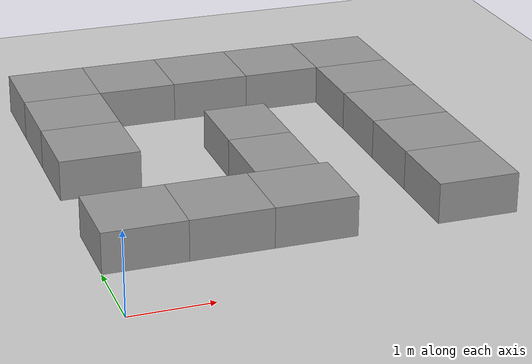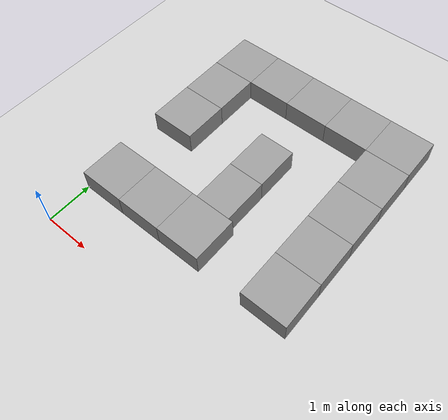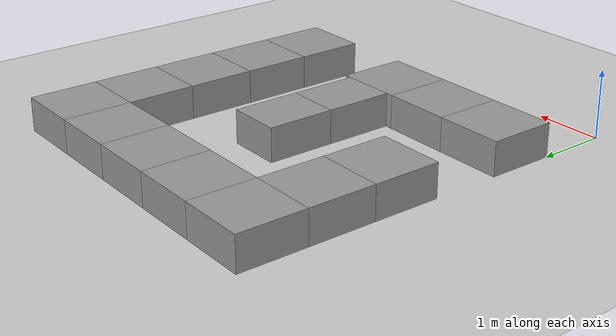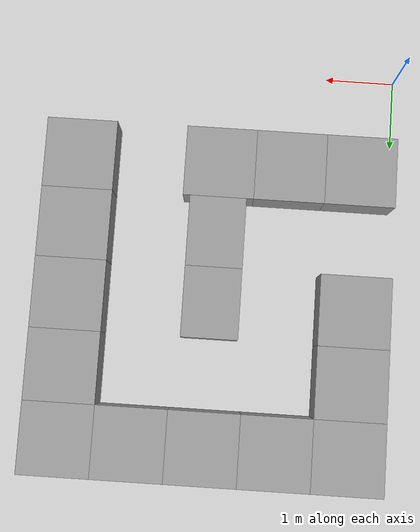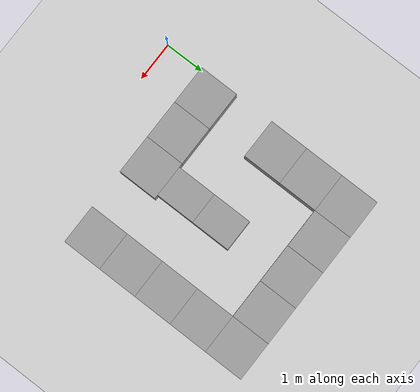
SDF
<?xml version="1.0" ?>
<sdf version="1.9">
  <world name="simple_maze_world">
    <physics name="1ms" type="ignored">
      <max_step_size>0.001</max_step_size>
      <real_time_factor>1.0</real_time_factor>
    </physics>
    <plugin
      filename="libignition-gazebo-physics-system.so"
      name="ignition::gazebo::systems::Physics">
    </plugin>
    <plugin
      filename="libignition-gazebo-user-commands-system.so"
      name="ignition::gazebo::systems::UserCommands">
    </plugin>
    <plugin
      filename="libignition-gazebo-scene-broadcaster-system.so"
      name="ignition::gazebo::systems::SceneBroadcaster">
    </plugin>
    <plugin
      filename="libignition-gazebo-contact-system.so"
      name="ignition::gazebo::systems::Contact">
    </plugin>

    <light type="directional" name="sun">
      <cast_shadows>false</cast_shadows>
      <pose>0 0 10 0 0 0</pose>
      <diffuse>0.8 0.8 0.8 1</diffuse>
      <specular>0.2 0.2 0.2 1</specular>
      <attenuation>
        <range>1000</range>
        <constant>0.9</constant>
        <linear>0.01</linear>
        <quadratic>0.001</quadratic>
      </attenuation>
      <direction>-0.5 0.1 -0.9</direction>
    </light>

    <model name="ground_plane">
      <static>true</static>
      <link name="link">
        <collision name="collision">
          <geometry>
            <plane>
              <normal>0 0 1</normal>
              <size>100 100</size>
            </plane>
          </geometry>
        </collision>
        <visual name="visual">
          <geometry>
            <plane>
              <normal>0 0 1</normal>
              <size>100 100</size>
            </plane>
          </geometry>
          <material>
            <ambient>0.8 0.8 0.8 1</ambient>
            <diffuse>0.8 0.8 0.8 1</diffuse>
            <specular>0.8 0.8 0.8 1</specular>
          </material>
        </visual>
      </link>
    </model>

    <!-- MAZE elements as requested -->
    <!-- Row 0 MAZEs (0_0 0_1 0_2 0_3 0_4) -->
    <model name="MAZE_0_0">
      <static>true</static>
      <pose>0.5 5.5 0.25 0 0 0</pose>
      <link name="link">
        <collision name="collision">
          <geometry>
            <box>
              <size>1 1 0.5</size>
            </box>
          </geometry>
          <surface>
            <friction>
              <ode>
                <mu>0.1</mu>
                <mu2>0.1</mu2>
              </ode>
            </friction>
            <contact>
              <ode>
                <kp>1e+6</kp>
                <kd>1</kd>
              </ode>
            </contact>
          </surface>
        </collision>
        <visual name="visual">
          <geometry>
            <box>
              <size>1 1 0.5</size>
            </box>
          </geometry>
          <material>
            <ambient>0.6 0.6 0.6 1</ambient>
            <diffuse>0.6 0.6 0.6 1</diffuse>
            <specular>0.1 0.1 0.1 1</specular>
          </material>
        </visual>
      </link>
    </model>

    <model name="MAZE_0_1">
      <static>true</static>
      <pose>1.5 5.5 0.25 0 0 0</pose>
      <link name="link">
        <collision name="collision">
          <geometry>
            <box>
              <size>1 1 0.5</size>
            </box>
          </geometry>
          <surface>
            <friction>
              <ode>
                <mu>0.1</mu>
                <mu2>0.1</mu2>
              </ode>
            </friction>
            <contact>
              <ode>
                <kp>1e+6</kp>
                <kd>1</kd>
              </ode>
            </contact>
          </surface>
        </collision>
        <visual name="visual">
          <geometry>
            <box>
              <size>1 1 0.5</size>
            </box>
          </geometry>
          <material>
            <ambient>0.6 0.6 0.6 1</ambient>
            <diffuse>0.6 0.6 0.6 1</diffuse>
            <specular>0.1 0.1 0.1 1</specular>
          </material>
        </visual>
      </link>
    </model>

    <model name="MAZE_0_2">
      <static>true</static>
      <pose>2.5 5.5 0.25 0 0 0</pose>
      <link name="link">
        <collision name="collision">
          <geometry>
            <box>
              <size>1 1 0.5</size>
            </box>
          </geometry>
          <surface>
            <friction>
              <ode>
                <mu>0.1</mu>
                <mu2>0.1</mu2>
              </ode>
            </friction>
            <contact>
              <ode>
                <kp>1e+6</kp>
                <kd>1</kd>
              </ode>
            </contact>
          </surface>
        </collision>
        <visual name="visual">
          <geometry>
            <box>
              <size>1 1 0.5</size>
            </box>
          </geometry>
          <material>
            <ambient>0.6 0.6 0.6 1</ambient>
            <diffuse>0.6 0.6 0.6 1</diffuse>
            <specular>0.1 0.1 0.1 1</specular>
          </material>
        </visual>
      </link>
    </model>

    <model name="MAZE_0_3">
      <static>true</static>
      <pose>3.5 5.5 0.25 0 0 0</pose>
      <link name="link">
        <collision name="collision">
          <geometry>
            <box>
              <size>1 1 0.5</size>
            </box>
          </geometry>
          <surface>
            <friction>
              <ode>
                <mu>0.1</mu>
                <mu2>0.1</mu2>
              </ode>
            </friction>
            <contact>
              <ode>
                <kp>1e+6</kp>
                <kd>1</kd>
              </ode>
            </contact>
          </surface>
        </collision>
        <visual name="visual">
          <geometry>
            <box>
              <size>1 1 0.5</size>
            </box>
          </geometry>
          <material>
            <ambient>0.6 0.6 0.6 1</ambient>
            <diffuse>0.6 0.6 0.6 1</diffuse>
            <specular>0.1 0.1 0.1 1</specular>
          </material>
        </visual>
      </link>
    </model>

    <model name="MAZE_0_4">
      <static>true</static>
      <pose>4.5 5.5 0.25 0 0 0</pose>
      <link name="link">
        <collision name="collision">
          <geometry>
            <box>
              <size>1 1 0.5</size>
            </box>
          </geometry>
          <surface>
            <friction>
              <ode>
                <mu>0.1</mu>
                <mu2>0.1</mu2>
              </ode>
            </friction>
            <contact>
              <ode>
                <kp>1e+6</kp>
                <kd>1</kd>
              </ode>
            </contact>
          </surface>
        </collision>
        <visual name="visual">
          <geometry>
            <box>
              <size>1 1 0.5</size>
            </box>
          </geometry>
          <material>
            <ambient>0.6 0.6 0.6 1</ambient>
            <diffuse>0.6 0.6 0.6 1</diffuse>
            <specular>0.1 0.1 0.1 1</specular>
          </material>
        </visual>
      </link>
    </model>

    <!-- Row 1 MAZEs (1_0 1_4) -->
    <model name="MAZE_1_0">
      <static>true</static>
      <pose>0.5 4.5 0.25 0 0 0</pose>
      <link name="link">
        <collision name="collision">
          <geometry>
            <box>
              <size>1 1 0.5</size>
            </box>
          </geometry>
          <surface>
            <friction>
              <ode>
                <mu>0.1</mu>
                <mu2>0.1</mu2>
              </ode>
            </friction>
            <contact>
              <ode>
                <kp>1e+6</kp>
                <kd>1</kd>
              </ode>
            </contact>
          </surface>
        </collision>
        <visual name="visual">
          <geometry>
            <box>
              <size>1 1 0.5</size>
            </box>
          </geometry>
          <material>
            <ambient>0.6 0.6 0.6 1</ambient>
            <diffuse>0.6 0.6 0.6 1</diffuse>
            <specular>0.1 0.1 0.1 1</specular>
          </material>
        </visual>
      </link>
    </model>

    <model name="MAZE_1_4">
      <static>true</static>
      <pose>4.5 4.5 0.25 0 0 0</pose>
      <link name="link">
        <collision name="collision">
          <geometry>
            <box>
              <size>1 1 0.5</size>
            </box>
          </geometry>
          <surface>
            <friction>
              <ode>
                <mu>0.1</mu>
                <mu2>0.1</mu2>
              </ode>
            </friction>
            <contact>
              <ode>
                <kp>1e+6</kp>
                <kd>1</kd>
              </ode>
            </contact>
          </surface>
        </collision>
        <visual name="visual">
          <geometry>
            <box>
              <size>1 1 0.5</size>
            </box>
          </geometry>
          <material>
            <ambient>0.6 0.6 0.6 1</ambient>
            <diffuse>0.6 0.6 0.6 1</diffuse>
            <specular>0.1 0.1 0.1 1</specular>
          </material>
        </visual>
      </link>
    </model>

    <!-- Row 2 MAZEs (2_0 2_2 2_4) -->
    <model name="MAZE_2_0">
      <static>true</static>
      <pose>0.5 3.5 0.25 0 0 0</pose>
      <link name="link">
        <collision name="collision">
          <geometry>
            <box>
              <size>1 1 0.5</size>
            </box>
          </geometry>
          <surface>
            <friction>
              <ode>
                <mu>0.1</mu>
                <mu2>0.1</mu2>
              </ode>
            </friction>
            <contact>
              <ode>
                <kp>1e+6</kp>
                <kd>1</kd>
              </ode>
            </contact>
          </surface>
        </collision>
        <visual name="visual">
          <geometry>
            <box>
              <size>1 1 0.5</size>
            </box>
          </geometry>
          <material>
            <ambient>0.6 0.6 0.6 1</ambient>
            <diffuse>0.6 0.6 0.6 1</diffuse>
            <specular>0.1 0.1 0.1 1</specular>
          </material>
        </visual>
      </link>
    </model>

    <model name="MAZE_2_2">
      <static>true</static>
      <pose>2.5 3.5 0.25 0 0 0</pose>
      <link name="link">
        <collision name="collision">
          <geometry>
            <box>
              <size>0.8 1.0 0.5</size>
            </box>
          </geometry>
          <surface>
            <friction>
              <ode>
                <mu>0.1</mu>
                <mu2>0.1</mu2>
              </ode>
            </friction>
            <contact>
              <ode>
                <kp>1e+6</kp>
                <kd>1</kd>
              </ode>
            </contact>
          </surface>
        </collision>
        <visual name="visual">
          <geometry>
            <box>
              <size>0.8 1 0.5</size>
            </box>
          </geometry>
          <material>
            <ambient>0.6 0.6 0.6 1</ambient>
            <diffuse>0.6 0.6 0.6 1</diffuse>
            <specular>0.1 0.1 0.1 1</specular>
          </material>
        </visual>
      </link>
    </model>

    <model name="MAZE_2_4">
      <static>true</static>
      <pose>4.5 3.5 0.25 0 0 0</pose>
      <link name="link">
        <collision name="collision">
          <geometry>
            <box>
              <size>1 1 0.5</size>
            </box>
          </geometry>
          <surface>
            <friction>
              <ode>
                <mu>0.1</mu>
                <mu2>0.1</mu2>
              </ode>
            </friction>
            <contact>
              <ode>
                <kp>1e+6</kp>
                <kd>1</kd>
              </ode>
            </contact>
          </surface>
        </collision>
        <visual name="visual">
          <geometry>
            <box>
              <size>1 1 0.5</size>
            </box>
          </geometry>
          <material>
            <ambient>0.6 0.6 0.6 1</ambient>
            <diffuse>0.6 0.6 0.6 1</diffuse>
            <specular>0.1 0.1 0.1 1</specular>
          </material>
        </visual>
      </link>
    </model>

    <!-- Row 3 MAZEs (3_0 3_2 3_4) -->

    <model name="MAZE_3_2">
      <static>true</static>
      <pose>2.5 2.5 0.25 0 0 0</pose>
      <link name="link">
        <collision name="collision">
          <geometry>
            <box>
              <size>0.8 1 0.5</size>
            </box>
          </geometry>
          <surface>
            <friction>
              <ode>
                <mu>0.1</mu>
                <mu2>0.1</mu2>
              </ode>
            </friction>
            <contact>
              <ode>
                <kp>1e+6</kp>
                <kd>1</kd>
              </ode>
            </contact>
          </surface>
        </collision>
        <visual name="visual">
          <geometry>
            <box>
              <size>0.8 1.0 0.5</size>
            </box>
          </geometry>
          <material>
            <ambient>0.6 0.6 0.6 1</ambient>
            <diffuse>0.6 0.6 0.6 1</diffuse>
            <specular>0.1 0.1 0.1 1</specular>
          </material>
        </visual>
      </link>
    </model>

    <model name="MAZE_3_4">
      <static>true</static>
      <pose>4.5 2.5 0.25 0 0 0</pose>
      <link name="link">
        <collision name="collision">
          <geometry>
            <box>
              <size>1 1 0.5</size>
            </box>
          </geometry>
          <surface>
            <friction>
              <ode>
                <mu>0.1</mu>
                <mu2>0.1</mu2>
              </ode>
            </friction>
            <contact>
              <ode>
                <kp>1e+6</kp>
                <kd>1</kd>
              </ode>
            </contact>
          </surface>
        </collision>
        <visual name="visual">
          <geometry>
            <box>
              <size>1 1 0.5</size>
            </box>
          </geometry>
          <material>
            <ambient>0.6 0.6 0.6 1</ambient>
            <diffuse>0.6 0.6 0.6 1</diffuse>
            <specular>0.1 0.1 0.1 1</specular>
          </material>
        </visual>
      </link>
    </model>

    <!-- Row 4 MAZEs (4_0 4_1 4_2 4_3 4_4) -->
    <model name="MAZE_4_0">
      <static>true</static>
      <pose>0.5 1.5 0.25 0 0 0</pose>
      <link name="link">
        <collision name="collision">
          <geometry>
            <box>
              <size>1 1 0.5</size>
            </box>
          </geometry>
          <surface>
            <friction>
              <ode>
                <mu>0.1</mu>
                <mu2>0.1</mu2>
              </ode>
            </friction>
            <contact>
              <ode>
                <kp>1e+6</kp>
                <kd>1</kd>
              </ode>
            </contact>
          </surface>
        </collision>
        <visual name="visual">
          <geometry>
            <box>
              <size>1 1 0.5</size>
            </box>
          </geometry>
          <material>
            <ambient>0.6 0.6 0.6 1</ambient>
            <diffuse>0.6 0.6 0.6 1</diffuse>
            <specular>0.1 0.1 0.1 1</specular>
          </material>
        </visual>
      </link>
    </model>

    <model name="MAZE_4_1">
      <static>true</static>
      <pose>1.5 1.5 0.25 0 0 0</pose>
      <link name="link">
        <collision name="collision">
          <geometry>
            <box>
              <size>1 1 0.5</size>
            </box>
          </geometry>
          <surface>
            <friction>
              <ode>
                <mu>0.1</mu>
                <mu2>0.1</mu2>
              </ode>
            </friction>
            <contact>
              <ode>
                <kp>1e+6</kp>
                <kd>1</kd>
              </ode>
            </contact>
          </surface>
        </collision>
        <visual name="visual">
          <geometry>
            <box>
              <size>1 1 0.5</size>
            </box>
          </geometry>
          <material>
            <ambient>0.6 0.6 0.6 1</ambient>
            <diffuse>0.6 0.6 0.6 1</diffuse>
            <specular>0.1 0.1 0.1 1</specular>
          </material>
        </visual>
      </link>
    </model>

    <model name="MAZE_4_2">
      <static>true</static>
      <pose>2.5 1.5 0.25 0 0 0</pose>
      <link name="link">
        <collision name="collision">
          <geometry>
            <box>
              <size>1 1 0.5</size>
            </box>
          </geometry>
          <surface>
            <friction>
              <ode>
                <mu>0.1</mu>
                <mu2>0.1</mu2>
              </ode>
            </friction>
            <contact>
              <ode>
                <kp>1e+6</kp>
                <kd>1</kd>
              </ode>
            </contact>
          </surface>
        </collision>
        <visual name="visual">
          <geometry>
            <box>
              <size>1 1 0.5</size>
            </box>
          </geometry>
          <material>
            <ambient>0.6 0.6 0.6 1</ambient>
            <diffuse>0.6 0.6 0.6 1</diffuse>
            <specular>0.1 0.1 0.1 1</specular>
          </material>
        </visual>
      </link>
    </model>

    <model name="MAZE_4_4">
      <static>true</static>
      <pose>4.5 1.5 0.25 0 0 0</pose>
      <link name="link">
        <collision name="collision">
          <geometry>
            <box>
              <size>1 1 0.5</size>
            </box>
          </geometry>
          <surface>
            <friction>
              <ode>
                <mu>0.1</mu>
                <mu2>0.1</mu2>
              </ode>
            </friction>
            <contact>
              <ode>
                <kp>1e+6</kp>
                <kd>1</kd>
              </ode>
            </contact>
          </surface>
        </collision>
        <visual name="visual">
          <geometry>
            <box>
              <size>1 1 0.5</size>
            </box>
          </geometry>
          <material>
            <ambient>0.6 0.6 0.6 1</ambient>
            <diffuse>0.6 0.6 0.6 1</diffuse>
            <specular>0.1 0.1 0.1 1</specular>
          </material>
        </visual>
      </link>
    </model>
  </world>
</sdf>
